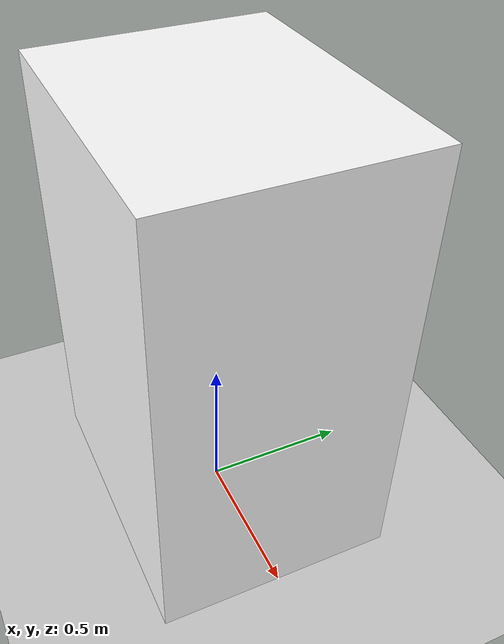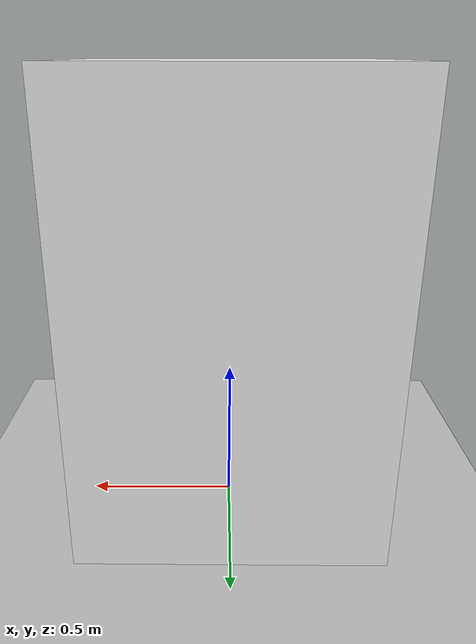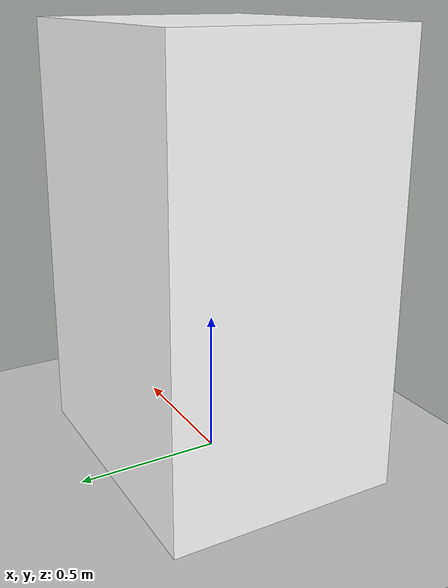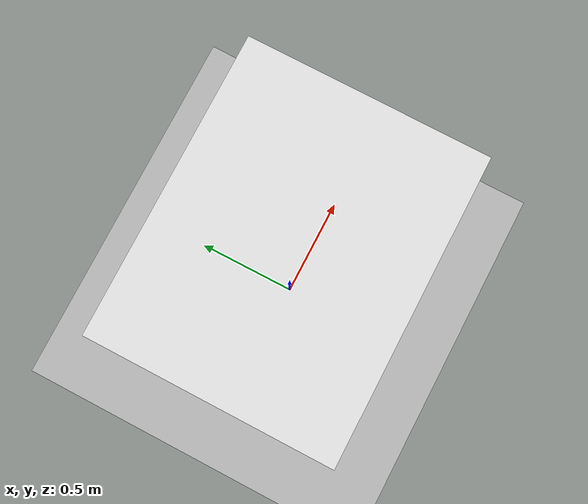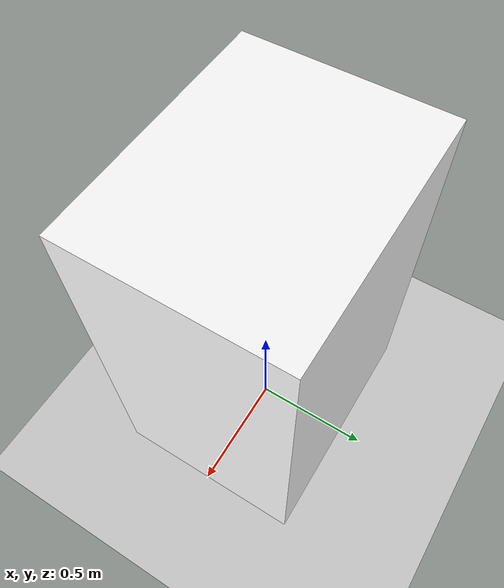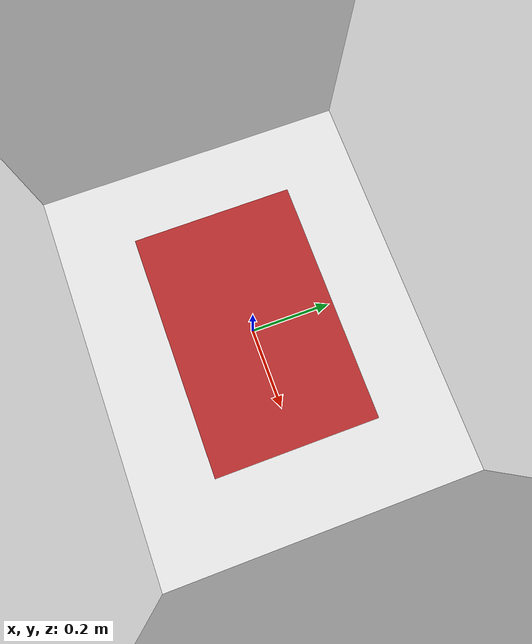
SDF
<?xml version="1.0" ?>
<sdf version="1.9">
  <world name="incubator_world">
    <physics name="1ms" type="ignored">
      <max_step_size>0.001</max_step_size>
      <real_time_factor>1.0</real_time_factor>
    </physics>

    <light type="directional" name="sun">
      <cast_shadows>true</cast_shadows>
      <pose>0 0 10 0 0 0</pose>
      <diffuse>0.8 0.8 0.8 1</diffuse>
      <specular>0.2 0.2 0.2 1</specular>
      <direction>-0.5 0.1 -0.9</direction>
    </light>

    <model name="ground_plane">
      <static>true</static>
      <link name="link">
        <collision name="collision">
          <geometry>
            <plane>
              <normal>0 0 1</normal>
              <size>100 100</size>
            </plane>
          </geometry>
        </collision>
        <visual name="visual">
          <geometry>
            <plane>
              <normal>0 0 1</normal>
              <size>100 100</size>
            </plane>
          </geometry>
          <material>
            <ambient>0.8 0.8 0.8 1</ambient>
            <diffuse>0.8 0.8 0.8 1</diffuse>
          </material>
        </visual>
      </link>
    </model>
    <include>
      <uri>model://incubator</uri>
      <pose>0 0 0.75 0 0 0</pose>
      <name>mushroom_incubator</name>
    </include>
    <!-- World-level thermal properties -->
    <atmosphere type="adiabatic">
      <temperature>293.15</temperature>
      <pressure>101325</pressure>
    </atmosphere>

    <!-- Enable thermal system for the world -->
    <plugin
      filename="ignition-gazebo-thermodynamics-system"
      name="ignition::gazebo::systems::Thermodynamics">
    </plugin>
  </world>
</sdf>

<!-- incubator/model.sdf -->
<sdf version="1.9">
  <model name="mushroom_incubator">
    <!-- Base link (incubator chamber) -->
    <link name="base_link">
      <visual name="visual">
        <geometry>
          <box>
            <size>1.0 0.8 1.5</size>
          </box>
        </geometry>
        <material>
          <ambient>1 1 1 1</ambient>
          <diffuse>1 1 1 1</diffuse>
        </material>
      </visual>
      <collision name="collision">
        <geometry>
          <box>
            <size>1.0 0.8 1.5</size>
          </box>
        </geometry>
      </collision>
      <inertial>
        <mass>50.0</mass>
        <inertia>
          <ixx>16.67</ixx>
          <ixy>0.0</ixy>
          <ixz>0.0</ixz>
          <iyy>16.67</iyy>
          <iyz>0.0</iyz>
          <izz>16.67</izz>
        </inertia>
      </inertial>
      <!-- Add thermal properties to the base_link -->
      <thermal_properties>
        <thermal_conductivity>0.024</thermal_conductivity>
        <specific_heat_capacity>1200.0</specific_heat_capacity>
        <density>50.0</density>
        <emissivity>0.9</emissivity>
        <temperature>293.15</temperature>
      </thermal_properties>
    </link>

    <!-- Heater element -->
    <link name="heater">
      <pose>0 0 -0.7 0 0 0</pose>
      <visual name="visual">
        <geometry>
          <box>
            <size>0.6 0.4 0.02</size>
          </box>
        </geometry>
        <material>
          <ambient>0.8 0.2 0.2 1</ambient>
          <diffuse>0.8 0.2 0.2 1</diffuse>
        </material>
      </visual>
      <collision name="collision">
        <geometry>
          <box>
            <size>0.6 0.4 0.02</size>
          </box>
        </geometry>
      </collision>
      <thermal_properties>
        <thermal_conductivity>237.0</thermal_conductivity>
        <specific_heat_capacity>900.0</specific_heat_capacity>
        <density>2700.0</density>
        <emissivity>0.95</emissivity>
        <temperature>293.15</temperature>
      </thermal_properties>
    </link>

    <joint name="heater_joint" type="fixed">
      <parent>base_link</parent>
      <child>heater</child>
    </joint>

    <!-- Temperature sensor -->
    <link name="temp_sensor">
      <pose>0 0 0.5 0 0 0</pose>
      <visual name="visual">
        <geometry>
          <cylinder>
            <radius>0.02</radius>
            <length>0.05</length>
          </cylinder>
        </geometry>
        <material>
          <ambient>0.5 0.5 0.5 1</ambient>
          <diffuse>0.5 0.5 0.5 1</diffuse>
        </material>
      </visual>
      <sensor name="thermometer" type="thermal">
        <always_on>1</always_on>
        <update_rate>10</update_rate>
        <thermal>
          <temperature>true</temperature>
        </thermal>
      </sensor>
    </link>

    <joint name="temp_sensor_joint" type="fixed">
      <parent>base_link</parent>
      <child>temp_sensor</child>
    </joint>

    <!-- Thermal source plugin for the heater -->
    <plugin
        filename="ignition-gazebo-thermal-source-system"
        name="ignition::gazebo::systems::ThermalSource">
      <link_name>heater</link_name>
      <power>500.0</power>
      <temperature_topic>/model/mushroom_incubator/heater/power</temperature_topic>
    </plugin>

    <!-- Thermal sensor plugin -->
    <plugin
        filename="ignition-gazebo-thermal-sensor-system"
        name="ignition::gazebo::systems::ThermalSensor">
      <link_name>temp_sensor</link_name>
      <topic>/model/mushroom_incubator/temperature</topic>
      <update_rate>10.0</update_rate>
    </plugin>
  </model>
</sdf>
